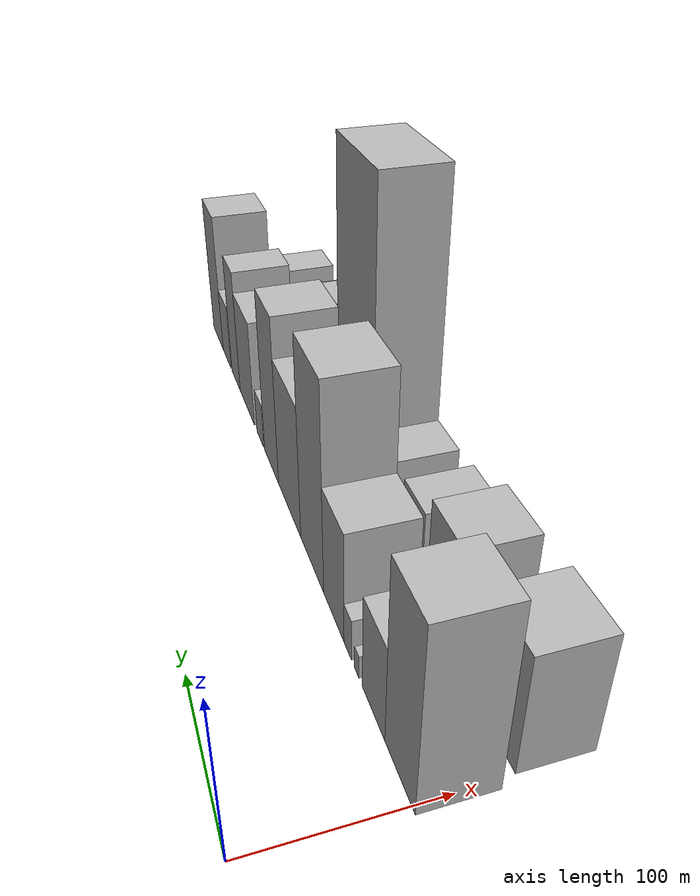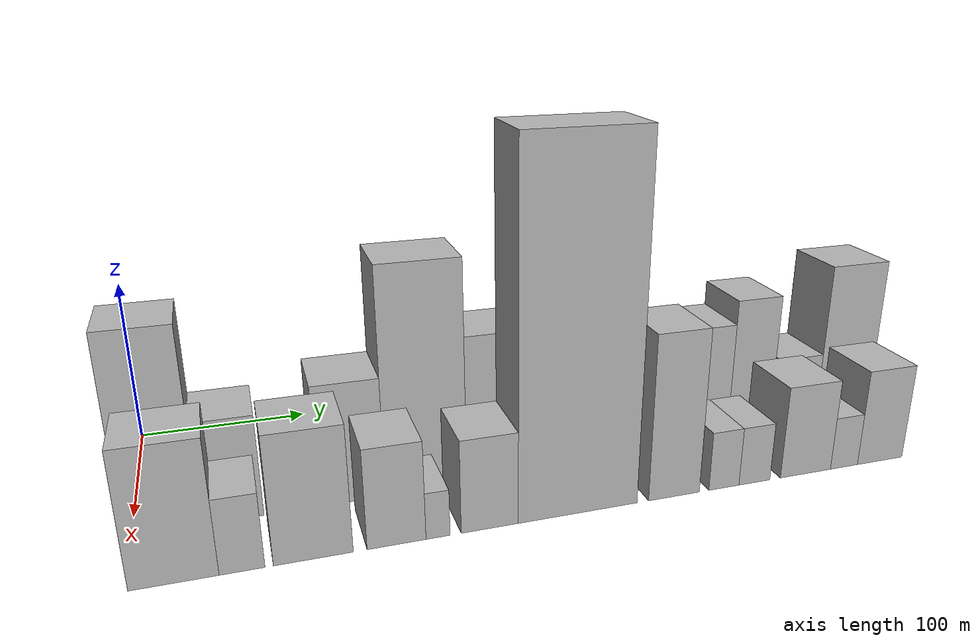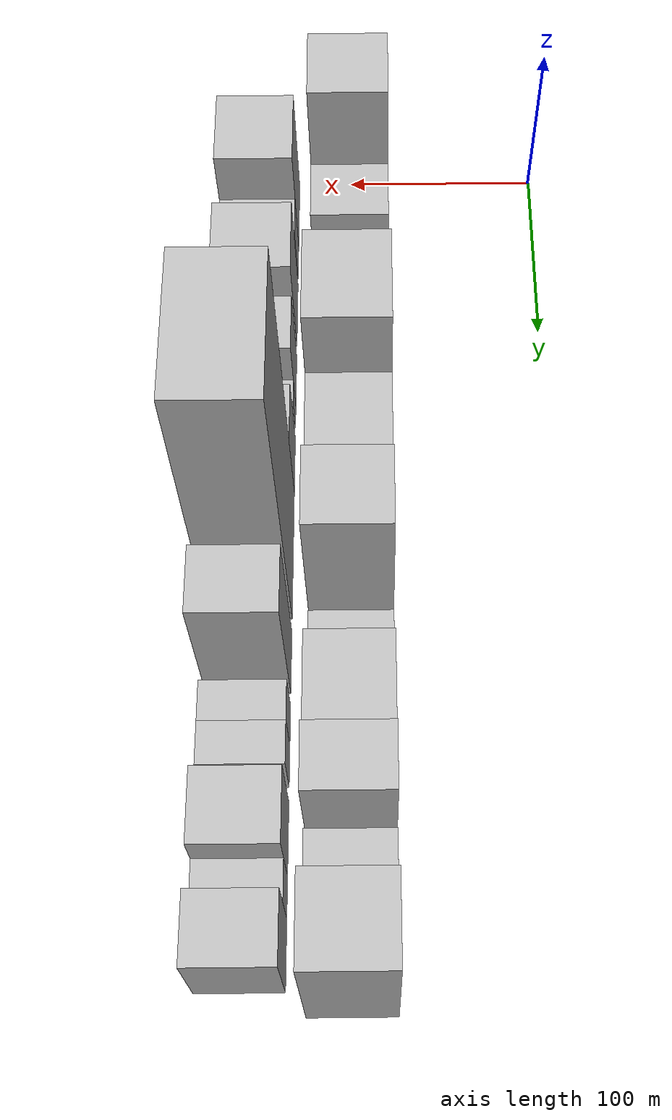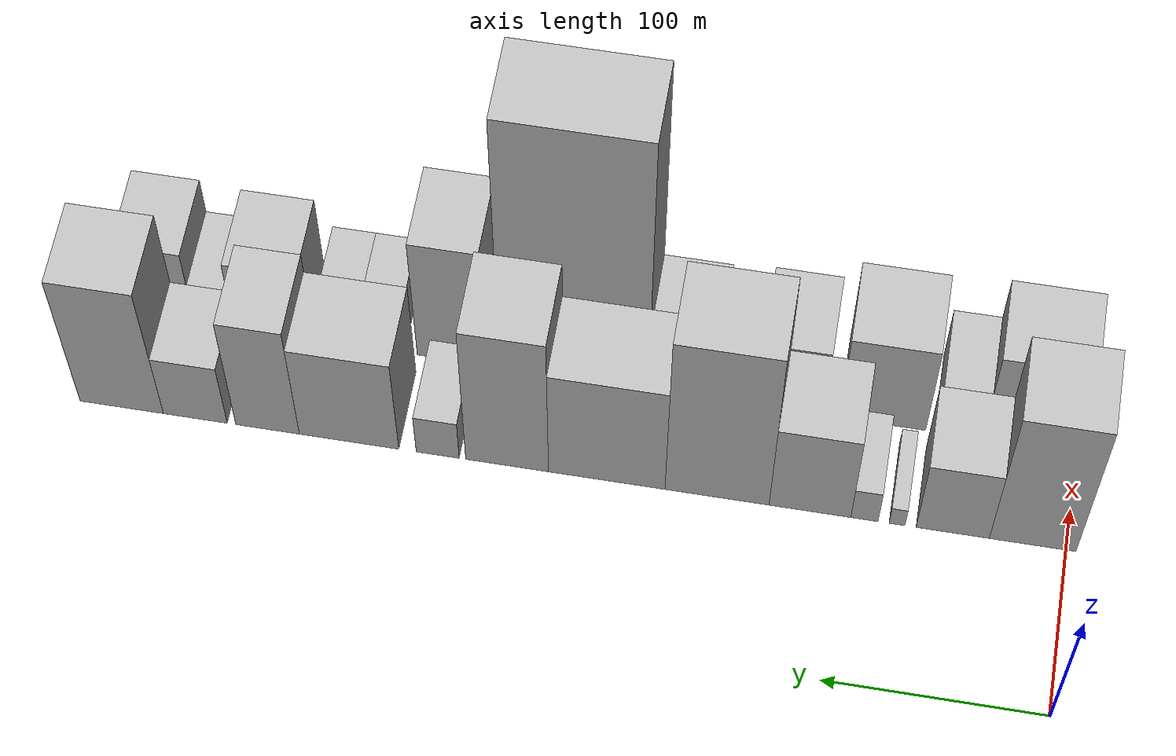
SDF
<sdf version="1.6">
 <world name="default">
  <model name="building_13">
   <static>1</static>
   <pose>100.0000 15.1622 0 0.000000 0.000000 0.000000</pose>
   <link name="link">
    <pose>0 0 57.00 0 0 0</pose>
    <collision name="collision"><geometry><box><size>40.0000 38.5914 114.0000</size></box></geometry></collision>
    <visual name="visual">
     <cast_shadows>0</cast_shadows>
     <geometry><box><size>40.0000 38.5914 114.0000</size></box></geometry>
     <material>
      <script>
       <uri>model://HANNAS_wall/materials/scripts</uri>
       <uri>model://HANNAS_wall/materials/textures</uri>
       <name>vrc/HANNAS_wall</name>
      </script>
     </material>
    </visual>
   </link>
  </model>
  <model name="building_14">
   <static>1</static>
   <pose>100.0000 50.7963 0 0.000000 0.000000 0.000000</pose>
   <link name="link">
    <pose>0 0 30.00 0 0 0</pose>
    <collision name="collision"><geometry><box><size>40.0000 32.6769 60.0000</size></box></geometry></collision>
    <visual name="visual">
     <cast_shadows>0</cast_shadows>
     <geometry><box><size>40.0000 32.6769 60.0000</size></box></geometry>
     <material>
      <script>
       <uri>model://HANNAS_wall/materials/scripts</uri>
       <uri>model://HANNAS_wall/materials/textures</uri>
       <name>vrc/HANNAS_wall</name>
      </script>
     </material>
    </visual>
   </link>
  </model>
  <model name="building_15">
   <static>1</static>
   <pose>100.0000 75.6895 0 0.000000 0.000000 0.000000</pose>
   <link name="link">
    <pose>0 0 7.50 0 0 0</pose>
    <collision name="collision"><geometry><box><size>40.0000 7.1095 15.0000</size></box></geometry></collision>
    <visual name="visual">
     <cast_shadows>0</cast_shadows>
     <geometry><box><size>40.0000 7.1095 15.0000</size></box></geometry>
     <material>
      <script>
       <uri>model://HANNAS_wall/materials/scripts</uri>
       <uri>model://HANNAS_wall/materials/textures</uri>
       <name>vrc/HANNAS_wall</name>
      </script>
     </material>
    </visual>
   </link>
  </model>
  <model name="building_16">
   <static>1</static>
   <pose>100.0000 90.3539 0 0.000000 0.000000 0.000000</pose>
   <link name="link">
    <pose>0 0 13.50 0 0 0</pose>
    <collision name="collision"><geometry><box><size>40.0000 12.2194 27.0000</size></box></geometry></collision>
    <visual name="visual">
     <cast_shadows>0</cast_shadows>
     <geometry><box><size>40.0000 12.2194 27.0000</size></box></geometry>
     <material>
      <script>
       <uri>model://HANNAS_wall/materials/scripts</uri>
       <uri>model://HANNAS_wall/materials/textures</uri>
       <name>vrc/HANNAS_wall</name>
      </script>
     </material>
    </visual>
   </link>
  </model>
  <model name="building_17">
   <static>1</static>
   <pose>100.0000 114.8886 0 0.000000 0.000000 0.000000</pose>
   <link name="link">
    <pose>0 0 36.00 0 0 0</pose>
    <collision name="collision"><geometry><box><size>40.0000 36.8498 72.0000</size></box></geometry></collision>
    <visual name="visual">
     <cast_shadows>0</cast_shadows>
     <geometry><box><size>40.0000 36.8498 72.0000</size></box></geometry>
     <material>
      <script>
       <uri>model://HANNAS_wall/materials/scripts</uri>
       <uri>model://HANNAS_wall/materials/textures</uri>
       <name>vrc/HANNAS_wall</name>
      </script>
     </material>
    </visual>
   </link>
  </model>
  <model name="building_18">
   <static>1</static>
   <pose>100.0000 156.8658 0 0.000000 0.000000 0.000000</pose>
   <link name="link">
    <pose>0 0 67.50 0 0 0</pose>
    <collision name="collision"><geometry><box><size>40.0000 47.1047 135.0000</size></box></geometry></collision>
    <visual name="visual">
     <cast_shadows>0</cast_shadows>
     <geometry><box><size>40.0000 47.1047 135.0000</size></box></geometry>
     <material>
      <script>
       <uri>model://HANNAS_wall/materials/scripts</uri>
       <uri>model://HANNAS_wall/materials/textures</uri>
       <name>vrc/HANNAS_wall</name>
      </script>
     </material>
    </visual>
   </link>
  </model>
  <model name="building_19">
   <static>1</static>
   <pose>100.0000 206.9208 0 0.000000 0.000000 0.000000</pose>
   <link name="link">
    <pose>0 0 45.00 0 0 0</pose>
    <collision name="collision"><geometry><box><size>40.0000 53.0052 90.0000</size></box></geometry></collision>
    <visual name="visual">
     <cast_shadows>0</cast_shadows>
     <geometry><box><size>40.0000 53.0052 90.0000</size></box></geometry>
     <material>
      <script>
       <uri>model://HANNAS_wall/materials/scripts</uri>
       <uri>model://HANNAS_wall/materials/textures</uri>
       <name>vrc/HANNAS_wall</name>
      </script>
     </material>
    </visual>
   </link>
  </model>
  <model name="building_20">
   <static>1</static>
   <pose>100.0000 252.3691 0 0.000000 0.000000 0.000000</pose>
   <link name="link">
    <pose>0 0 58.50 0 0 0</pose>
    <collision name="collision"><geometry><box><size>40.0000 37.8913 117.0000</size></box></geometry></collision>
    <visual name="visual">
     <cast_shadows>0</cast_shadows>
     <geometry><box><size>40.0000 37.8913 117.0000</size></box></geometry>
     <material>
      <script>
       <uri>model://HANNAS_wall/materials/scripts</uri>
       <uri>model://HANNAS_wall/materials/textures</uri>
       <name>vrc/HANNAS_wall</name>
      </script>
     </material>
    </visual>
   </link>
  </model>
  <model name="building_21">
   <static>1</static>
   <pose>100.0000 284.1715 0 0.000000 0.000000 0.000000</pose>
   <link name="link">
    <pose>0 0 16.50 0 0 0</pose>
    <collision name="collision"><geometry><box><size>40.0000 19.7134 33.0000</size></box></geometry></collision>
    <visual name="visual">
     <cast_shadows>0</cast_shadows>
     <geometry><box><size>40.0000 19.7134 33.0000</size></box></geometry>
     <material>
      <script>
       <uri>model://HANNAS_wall/materials/scripts</uri>
       <uri>model://HANNAS_wall/materials/textures</uri>
       <name>vrc/HANNAS_wall</name>
      </script>
     </material>
    </visual>
   </link>
  </model>
  <model name="building_22">
   <static>1</static>
   <pose>100.0000 324.9975 0 0.000000 0.000000 0.000000</pose>
   <link name="link">
    <pose>0 0 39.00 0 0 0</pose>
    <collision name="collision"><geometry><box><size>40.0000 45.9386 78.0000</size></box></geometry></collision>
    <visual name="visual">
     <cast_shadows>0</cast_shadows>
     <geometry><box><size>40.0000 45.9386 78.0000</size></box></geometry>
     <material>
      <script>
       <uri>model://HANNAS_wall/materials/scripts</uri>
       <uri>model://HANNAS_wall/materials/textures</uri>
       <name>vrc/HANNAS_wall</name>
      </script>
     </material>
    </visual>
   </link>
  </model>
  <model name="building_23">
   <static>1</static>
   <pose>100.0000 362.6990 0 0.000000 0.000000 0.000000</pose>
   <link name="link">
    <pose>0 0 46.50 0 0 0</pose>
    <collision name="collision"><geometry><box><size>40.0000 29.4644 93.0000</size></box></geometry></collision>
    <visual name="visual">
     <cast_shadows>0</cast_shadows>
     <geometry><box><size>40.0000 29.4644 93.0000</size></box></geometry>
     <material>
      <script>
       <uri>model://HANNAS_wall/materials/scripts</uri>
       <uri>model://HANNAS_wall/materials/textures</uri>
       <name>vrc/HANNAS_wall</name>
      </script>
     </material>
    </visual>
   </link>
  </model>
  <model name="building_24">
   <static>1</static>
   <pose>100.0000 396.2812 0 0.000000 0.000000 0.000000</pose>
   <link name="link">
    <pose>0 0 25.50 0 0 0</pose>
    <collision name="collision"><geometry><box><size>40.0000 29.7000 51.0000</size></box></geometry></collision>
    <visual name="visual">
     <cast_shadows>0</cast_shadows>
     <geometry><box><size>40.0000 29.7000 51.0000</size></box></geometry>
     <material>
      <script>
       <uri>model://HANNAS_wall/materials/scripts</uri>
       <uri>model://HANNAS_wall/materials/textures</uri>
       <name>vrc/HANNAS_wall</name>
      </script>
     </material>
    </visual>
   </link>
  </model>
  <model name="building_25">
   <static>1</static>
   <pose>100.0000 430.5857 0 0.000000 0.000000 0.000000</pose>
   <link name="link">
    <pose>0 0 54.00 0 0 0</pose>
    <collision name="collision"><geometry><box><size>40.0000 38.9091 108.0000</size></box></geometry></collision>
    <visual name="visual">
     <cast_shadows>0</cast_shadows>
     <geometry><box><size>40.0000 38.9091 108.0000</size></box></geometry>
     <material>
      <script>
       <uri>model://HANNAS_wall/materials/scripts</uri>
       <uri>model://HANNAS_wall/materials/textures</uri>
       <name>vrc/HANNAS_wall</name>
      </script>
     </material>
    </visual>
   </link>
  </model>
  <model name="building_38">
   <static>1</static>
   <pose>149.0000 21.8037 0 0.000000 0.000000 0.000000</pose>
   <link name="link">
    <pose>0 0 37.50 0 0 0</pose>
    <collision name="collision"><geometry><box><size>40.0000 41.7092 75.0000</size></box></geometry></collision>
    <visual name="visual">
     <cast_shadows>0</cast_shadows>
     <geometry><box><size>40.0000 41.7092 75.0000</size></box></geometry>
     <material>
      <script>
       <uri>model://HANNAS_wall/materials/scripts</uri>
       <uri>model://HANNAS_wall/materials/textures</uri>
       <name>vrc/HANNAS_wall</name>
      </script>
     </material>
    </visual>
   </link>
  </model>
  <model name="building_39">
   <static>1</static>
   <pose>149.0000 53.5422 0 0.000000 0.000000 0.000000</pose>
   <link name="link">
    <pose>0 0 21.00 0 0 0</pose>
    <collision name="collision"><geometry><box><size>40.0000 21.7679 42.0000</size></box></geometry></collision>
    <visual name="visual">
     <cast_shadows>0</cast_shadows>
     <geometry><box><size>40.0000 21.7679 42.0000</size></box></geometry>
     <material>
      <script>
       <uri>model://HANNAS_wall/materials/scripts</uri>
       <uri>model://HANNAS_wall/materials/textures</uri>
       <name>vrc/HANNAS_wall</name>
      </script>
     </material>
    </visual>
   </link>
  </model>
  <model name="building_40">
   <static>1</static>
   <pose>149.0000 88.1926 0 0.000000 0.000000 0.000000</pose>
   <link name="link">
    <pose>0 0 36.00 0 0 0</pose>
    <collision name="collision"><geometry><box><size>40.0000 39.5329 72.0000</size></box></geometry></collision>
    <visual name="visual">
     <cast_shadows>0</cast_shadows>
     <geometry><box><size>40.0000 39.5329 72.0000</size></box></geometry>
     <material>
      <script>
       <uri>model://HANNAS_wall/materials/scripts</uri>
       <uri>model://HANNAS_wall/materials/textures</uri>
       <name>vrc/HANNAS_wall</name>
      </script>
     </material>
    </visual>
   </link>
  </model>
  <model name="building_41">
   <static>1</static>
   <pose>149.0000 130.2591 0 0.000000 0.000000 0.000000</pose>
   <link name="link">
    <pose>0 0 28.50 0 0 0</pose>
    <collision name="collision"><geometry><box><size>40.0000 30.6001 57.0000</size></box></geometry></collision>
    <visual name="visual">
     <cast_shadows>0</cast_shadows>
     <geometry><box><size>40.0000 30.6001 57.0000</size></box></geometry>
     <material>
      <script>
       <uri>model://HANNAS_wall/materials/scripts</uri>
       <uri>model://HANNAS_wall/materials/textures</uri>
       <name>vrc/HANNAS_wall</name>
      </script>
     </material>
    </visual>
   </link>
  </model>
  <model name="building_42">
   <static>1</static>
   <pose>149.0000 151.9673 0 0.000000 0.000000 0.000000</pose>
   <link name="link">
    <pose>0 0 13.50 0 0 0</pose>
    <collision name="collision"><geometry><box><size>40.0000 12.8163 27.0000</size></box></geometry></collision>
    <visual name="visual">
     <cast_shadows>0</cast_shadows>
     <geometry><box><size>40.0000 12.8163 27.0000</size></box></geometry>
     <material>
      <script>
       <uri>model://HANNAS_wall/materials/scripts</uri>
       <uri>model://HANNAS_wall/materials/textures</uri>
       <name>vrc/HANNAS_wall</name>
      </script>
     </material>
    </visual>
   </link>
  </model>
  <model name="building_43">
   <static>1</static>
   <pose>149.0000 180.0473 0 0.000000 0.000000 0.000000</pose>
   <link name="link">
    <pose>0 0 27.00 0 0 0</pose>
    <collision name="collision"><geometry><box><size>40.0000 31.3436 54.0000</size></box></geometry></collision>
    <visual name="visual">
     <cast_shadows>0</cast_shadows>
     <geometry><box><size>40.0000 31.3436 54.0000</size></box></geometry>
     <material>
      <script>
       <uri>model://HANNAS_wall/materials/scripts</uri>
       <uri>model://HANNAS_wall/materials/textures</uri>
       <name>vrc/HANNAS_wall</name>
      </script>
     </material>
    </visual>
   </link>
  </model>
  <model name="building_44">
   <static>1</static>
   <pose>149.0000 230.2277 0 0.000000 0.000000 0.000000</pose>
   <link name="link">
    <pose>0 0 103.50 0 0 0</pose>
    <collision name="collision"><geometry><box><size>40.0000 69.0172 207.0000</size></box></geometry></collision>
    <visual name="visual">
     <cast_shadows>0</cast_shadows>
     <geometry><box><size>40.0000 69.0172 207.0000</size></box></geometry>
     <material>
      <script>
       <uri>model://HANNAS_wall/materials/scripts</uri>
       <uri>model://HANNAS_wall/materials/textures</uri>
       <name>vrc/HANNAS_wall</name>
      </script>
     </material>
    </visual>
   </link>
  </model>
  <model name="building_45">
   <static>1</static>
   <pose>149.0000 287.4355 0 0.000000 0.000000 0.000000</pose>
   <link name="link">
    <pose>0 0 49.50 0 0 0</pose>
    <collision name="collision"><geometry><box><size>40.0000 31.3983 99.0000</size></box></geometry></collision>
    <visual name="visual">
     <cast_shadows>0</cast_shadows>
     <geometry><box><size>40.0000 31.3983 99.0000</size></box></geometry>
     <material>
      <script>
       <uri>model://HANNAS_wall/materials/scripts</uri>
       <uri>model://HANNAS_wall/materials/textures</uri>
       <name>vrc/HANNAS_wall</name>
      </script>
     </material>
    </visual>
   </link>
  </model>
  <model name="building_46">
   <static>1</static>
   <pose>149.0000 318.7359 0 0.000000 0.000000 0.000000</pose>
   <link name="link">
    <pose>0 0 18.00 0 0 0</pose>
    <collision name="collision"><geometry><box><size>40.0000 19.2025 36.0000</size></box></geometry></collision>
    <visual name="visual">
     <cast_shadows>0</cast_shadows>
     <geometry><box><size>40.0000 19.2025 36.0000</size></box></geometry>
     <material>
      <script>
       <uri>model://HANNAS_wall/materials/scripts</uri>
       <uri>model://HANNAS_wall/materials/textures</uri>
       <name>vrc/HANNAS_wall</name>
      </script>
     </material>
    </visual>
   </link>
  </model>
  <model name="building_47">
   <static>1</static>
   <pose>149.0000 338.4145 0 0.000000 0.000000 0.000000</pose>
   <link name="link">
    <pose>0 0 18.00 0 0 0</pose>
    <collision name="collision"><geometry><box><size>40.0000 20.1549 36.0000</size></box></geometry></collision>
    <visual name="visual">
     <cast_shadows>0</cast_shadows>
     <geometry><box><size>40.0000 20.1549 36.0000</size></box></geometry>
     <material>
      <script>
       <uri>model://HANNAS_wall/materials/scripts</uri>
       <uri>model://HANNAS_wall/materials/textures</uri>
       <name>vrc/HANNAS_wall</name>
      </script>
     </material>
    </visual>
   </link>
  </model>
  <model name="building_48">
   <static>1</static>
   <pose>149.0000 372.3784 0 0.000000 0.000000 0.000000</pose>
   <link name="link">
    <pose>0 0 28.50 0 0 0</pose>
    <collision name="collision"><geometry><box><size>40.0000 33.7728 57.0000</size></box></geometry></collision>
    <visual name="visual">
     <cast_shadows>0</cast_shadows>
     <geometry><box><size>40.0000 33.7728 57.0000</size></box></geometry>
     <material>
      <script>
       <uri>model://HANNAS_wall/materials/scripts</uri>
       <uri>model://HANNAS_wall/materials/textures</uri>
       <name>vrc/HANNAS_wall</name>
      </script>
     </material>
    </visual>
   </link>
  </model>
  <model name="building_49">
   <static>1</static>
   <pose>149.0000 398.6457 0 0.000000 0.000000 0.000000</pose>
   <link name="link">
    <pose>0 0 16.50 0 0 0</pose>
    <collision name="collision"><geometry><box><size>40.0000 18.7617 33.0000</size></box></geometry></collision>
    <visual name="visual">
     <cast_shadows>0</cast_shadows>
     <geometry><box><size>40.0000 18.7617 33.0000</size></box></geometry>
     <material>
      <script>
       <uri>model://HANNAS_wall/materials/scripts</uri>
       <uri>model://HANNAS_wall/materials/textures</uri>
       <name>vrc/HANNAS_wall</name>
      </script>
     </material>
    </visual>
   </link>
  </model>
  <model name="building_50">
   <static>1</static>
   <pose>149.0000 423.7917 0 0.000000 0.000000 0.000000</pose>
   <link name="link">
    <pose>0 0 30.00 0 0 0</pose>
    <collision name="collision"><geometry><box><size>40.0000 31.5302 60.0000</size></box></geometry></collision>
    <visual name="visual">
     <cast_shadows>0</cast_shadows>
     <geometry><box><size>40.0000 31.5302 60.0000</size></box></geometry>
     <material>
      <script>
       <uri>model://HANNAS_wall/materials/scripts</uri>
       <uri>model://HANNAS_wall/materials/textures</uri>
       <name>vrc/HANNAS_wall</name>
      </script>
     </material>
    </visual>
   </link>
  </model>
 </world>
</sdf>
